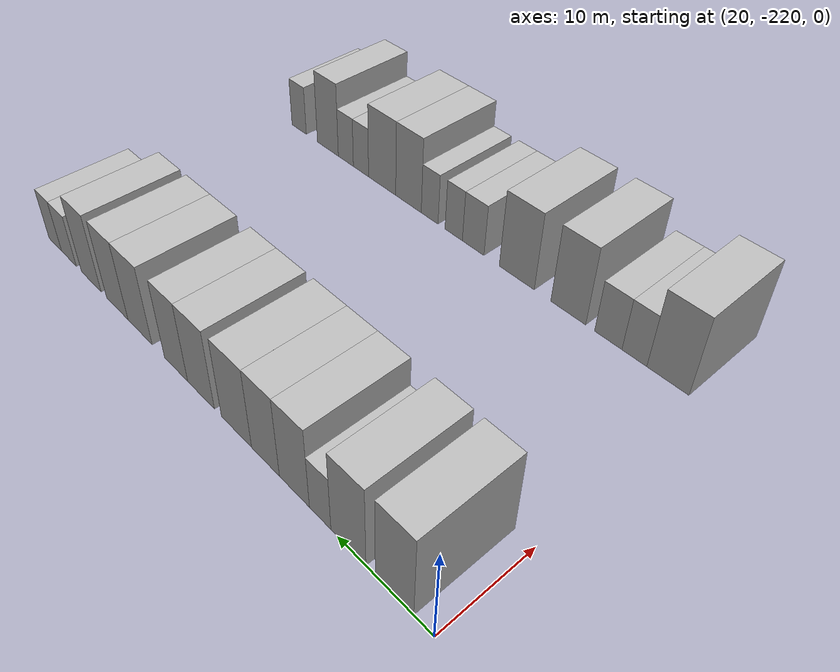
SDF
<sdf version="1.6">
 <world name="default">
  <model name="building_1">
   <static>1</static>
   <pose>25.0000 -216.0419 0 0.000000 0.000000 0.000000</pose>
   <link name="link">
    <pose>0 0 4.50 0 0 0</pose>
    <collision name="collision"><geometry><box><size>10.0000 3.9163 9.0000</size></box></geometry></collision>
    <visual name="visual">
     <cast_shadows>0</cast_shadows>
     <geometry><box><size>10.0000 3.9163 9.0000</size></box></geometry>
     <material>
      <script>
       <uri>model://HANNAS_wall/materials/scripts</uri>
       <uri>model://HANNAS_wall/materials/textures</uri>
       <name>vrc/HANNAS_wall</name>
      </script>
     </material>
    </visual>
   </link>
  </model>
  <model name="building_2">
   <static>1</static>
   <pose>25.0000 -211.1497 0 0.000000 0.000000 0.000000</pose>
   <link name="link">
    <pose>0 0 4.50 0 0 0</pose>
    <collision name="collision"><geometry><box><size>10.0000 3.8681 9.0000</size></box></geometry></collision>
    <visual name="visual">
     <cast_shadows>0</cast_shadows>
     <geometry><box><size>10.0000 3.8681 9.0000</size></box></geometry>
     <material>
      <script>
       <uri>model://HANNAS_wall/materials/scripts</uri>
       <uri>model://HANNAS_wall/materials/textures</uri>
       <name>vrc/HANNAS_wall</name>
      </script>
     </material>
    </visual>
   </link>
  </model>
  <model name="building_3">
   <static>1</static>
   <pose>25.0000 -207.9649 0 0.000000 0.000000 0.000000</pose>
   <link name="link">
    <pose>0 0 3.00 0 0 0</pose>
    <collision name="collision"><geometry><box><size>10.0000 2.5015 6.0000</size></box></geometry></collision>
    <visual name="visual">
     <cast_shadows>0</cast_shadows>
     <geometry><box><size>10.0000 2.5015 6.0000</size></box></geometry>
     <material>
      <script>
       <uri>model://HANNAS_wall/materials/scripts</uri>
       <uri>model://HANNAS_wall/materials/textures</uri>
       <name>vrc/HANNAS_wall</name>
      </script>
     </material>
    </visual>
   </link>
  </model>
  <model name="building_4">
   <static>1</static>
   <pose>25.0000 -204.8783 0 0.000000 0.000000 0.000000</pose>
   <link name="link">
    <pose>0 0 4.50 0 0 0</pose>
    <collision name="collision"><geometry><box><size>10.0000 3.6717 9.0000</size></box></geometry></collision>
    <visual name="visual">
     <cast_shadows>0</cast_shadows>
     <geometry><box><size>10.0000 3.6717 9.0000</size></box></geometry>
     <material>
      <script>
       <uri>model://HANNAS_wall/materials/scripts</uri>
       <uri>model://HANNAS_wall/materials/textures</uri>
       <name>vrc/HANNAS_wall</name>
      </script>
     </material>
    </visual>
   </link>
  </model>
  <model name="building_5">
   <static>1</static>
   <pose>25.0000 -201.2408 0 0.000000 0.000000 0.000000</pose>
   <link name="link">
    <pose>0 0 4.50 0 0 0</pose>
    <collision name="collision"><geometry><box><size>10.0000 3.6034 9.0000</size></box></geometry></collision>
    <visual name="visual">
     <cast_shadows>0</cast_shadows>
     <geometry><box><size>10.0000 3.6034 9.0000</size></box></geometry>
     <material>
      <script>
       <uri>model://HANNAS_wall/materials/scripts</uri>
       <uri>model://HANNAS_wall/materials/textures</uri>
       <name>vrc/HANNAS_wall</name>
      </script>
     </material>
    </visual>
   </link>
  </model>
  <model name="building_6">
   <static>1</static>
   <pose>25.0000 -197.3695 0 0.000000 0.000000 0.000000</pose>
   <link name="link">
    <pose>0 0 4.50 0 0 0</pose>
    <collision name="collision"><geometry><box><size>10.0000 4.1391 9.0000</size></box></geometry></collision>
    <visual name="visual">
     <cast_shadows>0</cast_shadows>
     <geometry><box><size>10.0000 4.1391 9.0000</size></box></geometry>
     <material>
      <script>
       <uri>model://HANNAS_wall/materials/scripts</uri>
       <uri>model://HANNAS_wall/materials/textures</uri>
       <name>vrc/HANNAS_wall</name>
      </script>
     </material>
    </visual>
   </link>
  </model>
  <model name="building_7">
   <static>1</static>
   <pose>25.0000 -192.3266 0 0.000000 0.000000 0.000000</pose>
   <link name="link">
    <pose>0 0 4.50 0 0 0</pose>
    <collision name="collision"><geometry><box><size>10.0000 3.9469 9.0000</size></box></geometry></collision>
    <visual name="visual">
     <cast_shadows>0</cast_shadows>
     <geometry><box><size>10.0000 3.9469 9.0000</size></box></geometry>
     <material>
      <script>
       <uri>model://HANNAS_wall/materials/scripts</uri>
       <uri>model://HANNAS_wall/materials/textures</uri>
       <name>vrc/HANNAS_wall</name>
      </script>
     </material>
    </visual>
   </link>
  </model>
  <model name="building_8">
   <static>1</static>
   <pose>25.0000 -188.5478 0 0.000000 0.000000 0.000000</pose>
   <link name="link">
    <pose>0 0 4.50 0 0 0</pose>
    <collision name="collision"><geometry><box><size>10.0000 3.6106 9.0000</size></box></geometry></collision>
    <visual name="visual">
     <cast_shadows>0</cast_shadows>
     <geometry><box><size>10.0000 3.6106 9.0000</size></box></geometry>
     <material>
      <script>
       <uri>model://HANNAS_wall/materials/scripts</uri>
       <uri>model://HANNAS_wall/materials/textures</uri>
       <name>vrc/HANNAS_wall</name>
      </script>
     </material>
    </visual>
   </link>
  </model>
  <model name="building_9">
   <static>1</static>
   <pose>25.0000 -182.7018 0 0.000000 0.000000 0.000000</pose>
   <link name="link">
    <pose>0 0 4.50 0 0 0</pose>
    <collision name="collision"><geometry><box><size>10.0000 4.0816 9.0000</size></box></geometry></collision>
    <visual name="visual">
     <cast_shadows>0</cast_shadows>
     <geometry><box><size>10.0000 4.0816 9.0000</size></box></geometry>
     <material>
      <script>
       <uri>model://HANNAS_wall/materials/scripts</uri>
       <uri>model://HANNAS_wall/materials/textures</uri>
       <name>vrc/HANNAS_wall</name>
      </script>
     </material>
    </visual>
   </link>
  </model>
  <model name="building_10">
   <static>1</static>
   <pose>25.0000 -178.7619 0 0.000000 0.000000 0.000000</pose>
   <link name="link">
    <pose>0 0 4.50 0 0 0</pose>
    <collision name="collision"><geometry><box><size>10.0000 3.7982 9.0000</size></box></geometry></collision>
    <visual name="visual">
     <cast_shadows>0</cast_shadows>
     <geometry><box><size>10.0000 3.7982 9.0000</size></box></geometry>
     <material>
      <script>
       <uri>model://HANNAS_wall/materials/scripts</uri>
       <uri>model://HANNAS_wall/materials/textures</uri>
       <name>vrc/HANNAS_wall</name>
      </script>
     </material>
    </visual>
   </link>
  </model>
  <model name="building_11">
   <static>1</static>
   <pose>25.0000 -174.0061 0 0.000000 0.000000 0.000000</pose>
   <link name="link">
    <pose>0 0 4.50 0 0 0</pose>
    <collision name="collision"><geometry><box><size>10.0000 3.7134 9.0000</size></box></geometry></collision>
    <visual name="visual">
     <cast_shadows>0</cast_shadows>
     <geometry><box><size>10.0000 3.7134 9.0000</size></box></geometry>
     <material>
      <script>
       <uri>model://HANNAS_wall/materials/scripts</uri>
       <uri>model://HANNAS_wall/materials/textures</uri>
       <name>vrc/HANNAS_wall</name>
      </script>
     </material>
    </visual>
   </link>
  </model>
  <model name="building_12">
   <static>1</static>
   <pose>25.0000 -169.6747 0 0.000000 0.000000 0.000000</pose>
   <link name="link">
    <pose>0 0 3.00 0 0 0</pose>
    <collision name="collision"><geometry><box><size>10.0000 2.9493 6.0000</size></box></geometry></collision>
    <visual name="visual">
     <cast_shadows>0</cast_shadows>
     <geometry><box><size>10.0000 2.9493 6.0000</size></box></geometry>
     <material>
      <script>
       <uri>model://HANNAS_wall/materials/scripts</uri>
       <uri>model://HANNAS_wall/materials/textures</uri>
       <name>vrc/HANNAS_wall</name>
      </script>
     </material>
    </visual>
   </link>
  </model>
  <model name="building_13">
   <static>1</static>
   <pose>25.0000 -166.9176 0 0.000000 0.000000 0.000000</pose>
   <link name="link">
    <pose>0 0 3.00 0 0 0</pose>
    <collision name="collision"><geometry><box><size>10.0000 2.5648 6.0000</size></box></geometry></collision>
    <visual name="visual">
     <cast_shadows>0</cast_shadows>
     <geometry><box><size>10.0000 2.5648 6.0000</size></box></geometry>
     <material>
      <script>
       <uri>model://HANNAS_wall/materials/scripts</uri>
       <uri>model://HANNAS_wall/materials/textures</uri>
       <name>vrc/HANNAS_wall</name>
      </script>
     </material>
    </visual>
   </link>
  </model>
  <model name="building_110">
   <static>1</static>
   <pose>55.0000 -216.8763 0 0.000000 0.000000 0.000000</pose>
   <link name="link">
    <pose>0 0 4.50 0 0 0</pose>
    <collision name="collision"><geometry><box><size>10.0000 4.2474 9.0000</size></box></geometry></collision>
    <visual name="visual">
     <cast_shadows>0</cast_shadows>
     <geometry><box><size>10.0000 4.2474 9.0000</size></box></geometry>
     <material>
      <script>
       <uri>model://HANNAS_wall/materials/scripts</uri>
       <uri>model://HANNAS_wall/materials/textures</uri>
       <name>vrc/HANNAS_wall</name>
      </script>
     </material>
    </visual>
   </link>
  </model>
  <model name="building_111">
   <static>1</static>
   <pose>55.0000 -213.4412 0 0.000000 0.000000 0.000000</pose>
   <link name="link">
    <pose>0 0 3.00 0 0 0</pose>
    <collision name="collision"><geometry><box><size>10.0000 2.6228 6.0000</size></box></geometry></collision>
    <visual name="visual">
     <cast_shadows>0</cast_shadows>
     <geometry><box><size>10.0000 2.6228 6.0000</size></box></geometry>
     <material>
      <script>
       <uri>model://HANNAS_wall/materials/scripts</uri>
       <uri>model://HANNAS_wall/materials/textures</uri>
       <name>vrc/HANNAS_wall</name>
      </script>
     </material>
    </visual>
   </link>
  </model>
  <model name="building_112">
   <static>1</static>
   <pose>55.0000 -210.6367 0 0.000000 0.000000 0.000000</pose>
   <link name="link">
    <pose>0 0 3.00 0 0 0</pose>
    <collision name="collision"><geometry><box><size>10.0000 2.9863 6.0000</size></box></geometry></collision>
    <visual name="visual">
     <cast_shadows>0</cast_shadows>
     <geometry><box><size>10.0000 2.9863 6.0000</size></box></geometry>
     <material>
      <script>
       <uri>model://HANNAS_wall/materials/scripts</uri>
       <uri>model://HANNAS_wall/materials/textures</uri>
       <name>vrc/HANNAS_wall</name>
      </script>
     </material>
    </visual>
   </link>
  </model>
  <model name="building_113">
   <static>1</static>
   <pose>55.0000 -206.1159 0 0.000000 0.000000 0.000000</pose>
   <link name="link">
    <pose>0 0 4.50 0 0 0</pose>
    <collision name="collision"><geometry><box><size>10.0000 4.0554 9.0000</size></box></geometry></collision>
    <visual name="visual">
     <cast_shadows>0</cast_shadows>
     <geometry><box><size>10.0000 4.0554 9.0000</size></box></geometry>
     <material>
      <script>
       <uri>model://HANNAS_wall/materials/scripts</uri>
       <uri>model://HANNAS_wall/materials/textures</uri>
       <name>vrc/HANNAS_wall</name>
      </script>
     </material>
    </visual>
   </link>
  </model>
  <model name="building_114">
   <static>1</static>
   <pose>55.0000 -199.8830 0 0.000000 0.000000 0.000000</pose>
   <link name="link">
    <pose>0 0 4.50 0 0 0</pose>
    <collision name="collision"><geometry><box><size>10.0000 4.4104 9.0000</size></box></geometry></collision>
    <visual name="visual">
     <cast_shadows>0</cast_shadows>
     <geometry><box><size>10.0000 4.4104 9.0000</size></box></geometry>
     <material>
      <script>
       <uri>model://HANNAS_wall/materials/scripts</uri>
       <uri>model://HANNAS_wall/materials/textures</uri>
       <name>vrc/HANNAS_wall</name>
      </script>
     </material>
    </visual>
   </link>
  </model>
  <model name="building_115">
   <static>1</static>
   <pose>55.0000 -194.2160 0 0.000000 0.000000 0.000000</pose>
   <link name="link">
    <pose>0 0 3.00 0 0 0</pose>
    <collision name="collision"><geometry><box><size>10.0000 2.9236 6.0000</size></box></geometry></collision>
    <visual name="visual">
     <cast_shadows>0</cast_shadows>
     <geometry><box><size>10.0000 2.9236 6.0000</size></box></geometry>
     <material>
      <script>
       <uri>model://HANNAS_wall/materials/scripts</uri>
       <uri>model://HANNAS_wall/materials/textures</uri>
       <name>vrc/HANNAS_wall</name>
      </script>
     </material>
    </visual>
   </link>
  </model>
  <model name="building_116">
   <static>1</static>
   <pose>55.0000 -191.5484 0 0.000000 0.000000 0.000000</pose>
   <link name="link">
    <pose>0 0 3.00 0 0 0</pose>
    <collision name="collision"><geometry><box><size>10.0000 2.4114 6.0000</size></box></geometry></collision>
    <visual name="visual">
     <cast_shadows>0</cast_shadows>
     <geometry><box><size>10.0000 2.4114 6.0000</size></box></geometry>
     <material>
      <script>
       <uri>model://HANNAS_wall/materials/scripts</uri>
       <uri>model://HANNAS_wall/materials/textures</uri>
       <name>vrc/HANNAS_wall</name>
      </script>
     </material>
    </visual>
   </link>
  </model>
  <model name="building_117">
   <static>1</static>
   <pose>55.0000 -188.1269 0 0.000000 0.000000 0.000000</pose>
   <link name="link">
    <pose>0 0 3.00 0 0 0</pose>
    <collision name="collision"><geometry><box><size>10.0000 2.4316 6.0000</size></box></geometry></collision>
    <visual name="visual">
     <cast_shadows>0</cast_shadows>
     <geometry><box><size>10.0000 2.4316 6.0000</size></box></geometry>
     <material>
      <script>
       <uri>model://HANNAS_wall/materials/scripts</uri>
       <uri>model://HANNAS_wall/materials/textures</uri>
       <name>vrc/HANNAS_wall</name>
      </script>
     </material>
    </visual>
   </link>
  </model>
  <model name="building_118">
   <static>1</static>
   <pose>55.0000 -184.9866 0 0.000000 0.000000 0.000000</pose>
   <link name="link">
    <pose>0 0 4.50 0 0 0</pose>
    <collision name="collision"><geometry><box><size>10.0000 3.8489 9.0000</size></box></geometry></collision>
    <visual name="visual">
     <cast_shadows>0</cast_shadows>
     <geometry><box><size>10.0000 3.8489 9.0000</size></box></geometry>
     <material>
      <script>
       <uri>model://HANNAS_wall/materials/scripts</uri>
       <uri>model://HANNAS_wall/materials/textures</uri>
       <name>vrc/HANNAS_wall</name>
      </script>
     </material>
    </visual>
   </link>
  </model>
  <model name="building_119">
   <static>1</static>
   <pose>55.0000 -180.9221 0 0.000000 0.000000 0.000000</pose>
   <link name="link">
    <pose>0 0 4.50 0 0 0</pose>
    <collision name="collision"><geometry><box><size>10.0000 4.2803 9.0000</size></box></geometry></collision>
    <visual name="visual">
     <cast_shadows>0</cast_shadows>
     <geometry><box><size>10.0000 4.2803 9.0000</size></box></geometry>
     <material>
      <script>
       <uri>model://HANNAS_wall/materials/scripts</uri>
       <uri>model://HANNAS_wall/materials/textures</uri>
       <name>vrc/HANNAS_wall</name>
      </script>
     </material>
    </visual>
   </link>
  </model>
  <model name="building_120">
   <static>1</static>
   <pose>55.0000 -177.5416 0 0.000000 0.000000 0.000000</pose>
   <link name="link">
    <pose>0 0 3.00 0 0 0</pose>
    <collision name="collision"><geometry><box><size>10.0000 2.4807 6.0000</size></box></geometry></collision>
    <visual name="visual">
     <cast_shadows>0</cast_shadows>
     <geometry><box><size>10.0000 2.4807 6.0000</size></box></geometry>
     <material>
      <script>
       <uri>model://HANNAS_wall/materials/scripts</uri>
       <uri>model://HANNAS_wall/materials/textures</uri>
       <name>vrc/HANNAS_wall</name>
      </script>
     </material>
    </visual>
   </link>
  </model>
  <model name="building_121">
   <static>1</static>
   <pose>55.0000 -175.0378 0 0.000000 0.000000 0.000000</pose>
   <link name="link">
    <pose>0 0 3.00 0 0 0</pose>
    <collision name="collision"><geometry><box><size>10.0000 2.5269 6.0000</size></box></geometry></collision>
    <visual name="visual">
     <cast_shadows>0</cast_shadows>
     <geometry><box><size>10.0000 2.5269 6.0000</size></box></geometry>
     <material>
      <script>
       <uri>model://HANNAS_wall/materials/scripts</uri>
       <uri>model://HANNAS_wall/materials/textures</uri>
       <name>vrc/HANNAS_wall</name>
      </script>
     </material>
    </visual>
   </link>
  </model>
  <model name="building_122">
   <static>1</static>
   <pose>55.0000 -171.9593 0 0.000000 0.000000 0.000000</pose>
   <link name="link">
    <pose>0 0 4.50 0 0 0</pose>
    <collision name="collision"><geometry><box><size>10.0000 3.6302 9.0000</size></box></geometry></collision>
    <visual name="visual">
     <cast_shadows>0</cast_shadows>
     <geometry><box><size>10.0000 3.6302 9.0000</size></box></geometry>
     <material>
      <script>
       <uri>model://HANNAS_wall/materials/scripts</uri>
       <uri>model://HANNAS_wall/materials/textures</uri>
       <name>vrc/HANNAS_wall</name>
      </script>
     </material>
    </visual>
   </link>
  </model>
  <model name="building_123">
   <static>1</static>
   <pose>55.0000 -166.8445 0 0.000000 0.000000 0.000000</pose>
   <link name="link">
    <pose>0 0 3.00 0 0 0</pose>
    <collision name="collision"><geometry><box><size>10.0000 2.5993 6.0000</size></box></geometry></collision>
    <visual name="visual">
     <cast_shadows>0</cast_shadows>
     <geometry><box><size>10.0000 2.5993 6.0000</size></box></geometry>
     <material>
      <script>
       <uri>model://HANNAS_wall/materials/scripts</uri>
       <uri>model://HANNAS_wall/materials/textures</uri>
       <name>vrc/HANNAS_wall</name>
      </script>
     </material>
    </visual>
   </link>
  </model>
 </world>
</sdf>
